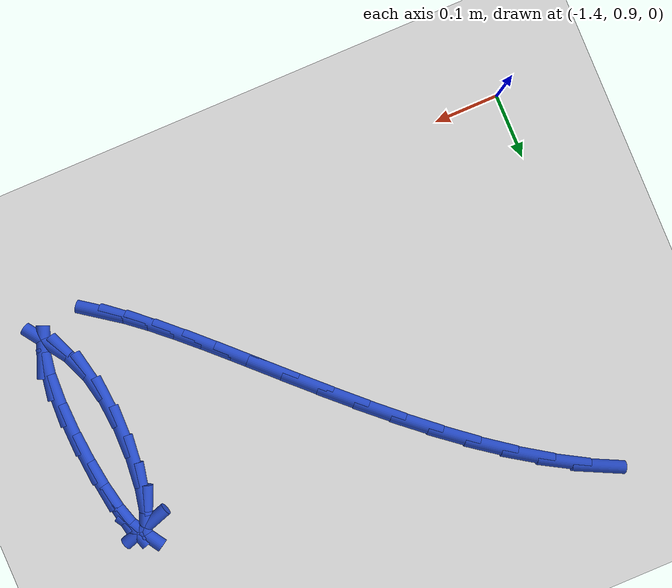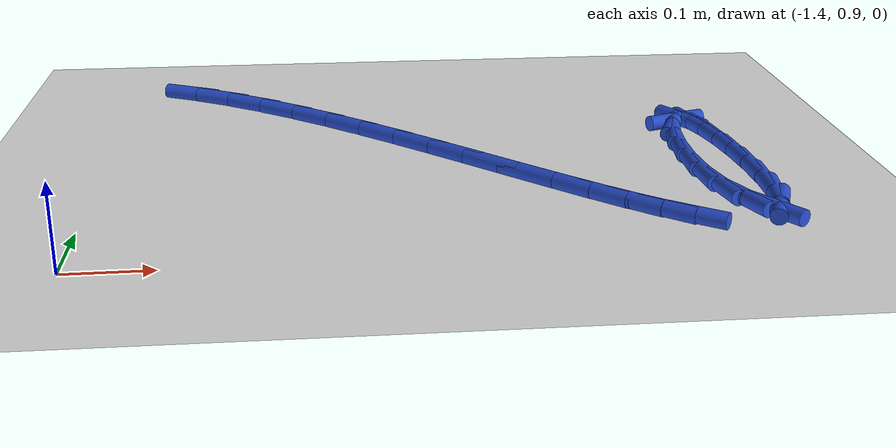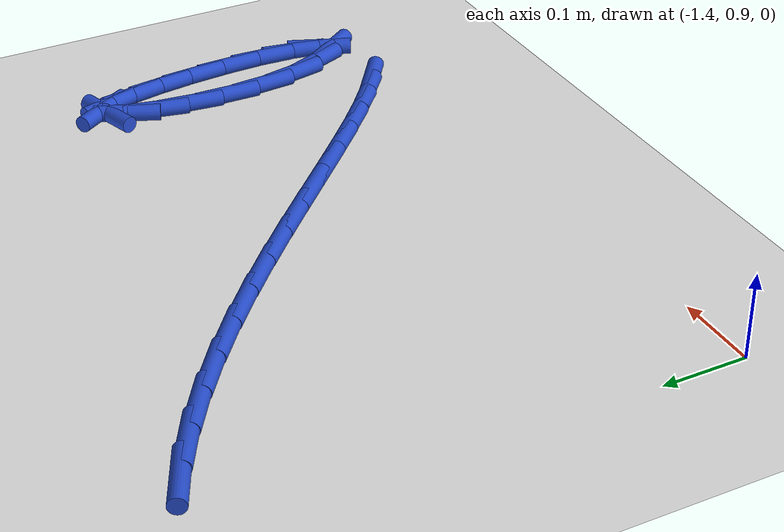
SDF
<sdf version="1.6">
 <world name="default">
  <model name="ground_plane">
   <static>1</static>
   <link name="link">
    <collision name="collision">
     <geometry><plane><normal>0 0 1</normal><size>100 100</size></plane></geometry>
     <surface><friction><ode><mu>100</mu><mu2>50</mu2></ode></friction></surface>
    </collision>
    <visual name="visual">
     <cast_shadows>0</cast_shadows>
     <geometry><plane><normal>0 0 1</normal><size>100 100</size></plane></geometry>
     <material>
      <script><uri>file://media/materials/scripts/gazebo.material</uri><name>Gazebo/WhiteGlow</name></script>
     </material>
    </visual>
   </link>
  </model>
  <model name="line">
   <link name="link_33">
    <pose>-0.632065725274408 0.9796731698303713 0.01 0 1.57 -0.9640610305196036</pose>
    <collision name="collision">
     <geometry><cylinder><radius>0.01</radius><length>0.08</length></cylinder></geometry>
    </collision>
    <visual name="visual">
     <material>
      <script><name>Gazebo/Blue</name><uri>file://media/materials/scripts/gazebo.material</uri></script>
     </material>
     <geometry><cylinder><radius>0.01</radius><length>0.08</length></cylinder></geometry>
    </visual>
   </link>
   <link name="link_34">
    <pose>-0.6539037090180577 1.0111368118141157 0.01 0 1.57 -1.1863665383951332</pose>
    <collision name="collision">
     <geometry><cylinder><radius>0.01</radius><length>0.08</length></cylinder></geometry>
    </collision>
    <visual name="visual">
     <material>
      <script><name>Gazebo/Blue</name><uri>file://media/materials/scripts/gazebo.material</uri></script>
     </material>
     <geometry><cylinder><radius>0.01</radius><length>0.08</length></cylinder></geometry>
    </visual>
   </link>
   <link name="link_35">
    <pose>-0.6696422845561799 1.050039917272067 0.01 0 1.57 -1.3712676362038603</pose>
    <collision name="collision">
     <geometry><cylinder><radius>0.01</radius><length>0.08</length></cylinder></geometry>
    </collision>
    <visual name="visual">
     <material>
      <script><name>Gazebo/Blue</name><uri>file://media/materials/scripts/gazebo.material</uri></script>
     </material>
     <geometry><cylinder><radius>0.01</radius><length>0.08</length></cylinder></geometry>
    </visual>
   </link>
   <link name="link_36">
    <pose>-0.6789149964960828 1.0958946258504128 0.01 0 1.57 -1.4964327469059333</pose>
    <collision name="collision">
     <geometry><cylinder><radius>0.01</radius><length>0.08</length></cylinder></geometry>
    </collision>
    <visual name="visual">
     <material>
      <script><name>Gazebo/Blue</name><uri>file://media/materials/scripts/gazebo.material</uri></script>
     </material>
     <geometry><cylinder><radius>0.01</radius><length>0.08</length></cylinder></geometry>
    </visual>
   </link>
   <link name="link_37">
    <pose>-0.6825691599199596 1.1449431678137225 0.01 0 1.57 1.5504297283499393</pose>
    <collision name="collision">
     <geometry><cylinder><radius>0.01</radius><length>0.08</length></cylinder></geometry>
    </collision>
    <visual name="visual">
     <material>
      <script><name>Gazebo/Blue</name><uri>file://media/materials/scripts/gazebo.material</uri></script>
     </material>
     <geometry><cylinder><radius>0.01</radius><length>0.08</length></cylinder></geometry>
    </visual>
   </link>
   <link name="link_38">
    <pose>-0.6815890739234766 1.1930587371713155 0.01 0 1.57 1.4636722464115142</pose>
    <collision name="collision">
     <geometry><cylinder><radius>0.01</radius><length>0.08</length></cylinder></geometry>
    </collision>
    <visual name="visual">
     <material>
      <script><name>Gazebo/Blue</name><uri>file://media/materials/scripts/gazebo.material</uri></script>
     </material>
     <geometry><cylinder><radius>0.01</radius><length>0.08</length></cylinder></geometry>
    </visual>
   </link>
   <link name="link_39">
    <pose>-0.6769590376022994 1.2361145279325125 0.01 0 1.57 1.3586305198370214</pose>
    <collision name="collision">
     <geometry><cylinder><radius>0.01</radius><length>0.08</length></cylinder></geometry>
    </collision>
    <visual name="visual">
     <material>
      <script><name>Gazebo/Blue</name><uri>file://media/materials/scripts/gazebo.material</uri></script>
     </material>
     <geometry><cylinder><radius>0.01</radius><length>0.08</length></cylinder></geometry>
    </visual>
   </link>
   <link name="link_40">
    <pose>-0.6696633500520935 1.269983734106632 0.01 0 1.57 1.1590446876044256</pose>
    <collision name="collision">
     <geometry><cylinder><radius>0.01</radius><length>0.08</length></cylinder></geometry>
    </collision>
    <visual name="visual">
     <material>
      <script><name>Gazebo/Blue</name><uri>file://media/materials/scripts/gazebo.material</uri></script>
     </material>
     <geometry><cylinder><radius>0.01</radius><length>0.08</length></cylinder></geometry>
    </visual>
   </link>
   <link name="link_41">
    <pose>-0.6606863103685253 1.2905395497029946 0.01 0 1.57 0.3180422039211436</pose>
    <collision name="collision">
     <geometry><cylinder><radius>0.01</radius><length>0.08</length></cylinder></geometry>
    </collision>
    <visual name="visual">
     <material>
      <script><name>Gazebo/Blue</name><uri>file://media/materials/scripts/gazebo.material</uri></script>
     </material>
     <geometry><cylinder><radius>0.01</radius><length>0.08</length></cylinder></geometry>
    </visual>
   </link>
   <link name="link_42">
    <pose>-0.65100818478211 1.2937257629691132 0.01 0 1.57 -1.0026407274218863</pose>
    <collision name="collision">
     <geometry><cylinder><radius>0.01</radius><length>0.08</length></cylinder></geometry>
    </collision>
    <visual name="visual">
     <material>
      <script><name>Gazebo/Blue</name><uri>file://media/materials/scripts/gazebo.material</uri></script>
     </material>
     <geometry><cylinder><radius>0.01</radius><length>0.08</length></cylinder></geometry>
    </visual>
   </link>
   <link name="link_43">
    <pose>-0.6414248655405949 1.2787135799741332 0.01 0 1.57 -1.276661519445988</pose>
    <collision name="collision">
     <geometry><cylinder><radius>0.01</radius><length>0.08</length></cylinder></geometry>
    </collision>
    <visual name="visual">
     <material>
      <script><name>Gazebo/Blue</name><uri>file://media/materials/scripts/gazebo.material</uri></script>
     </material>
     <geometry><cylinder><radius>0.01</radius><length>0.08</length></cylinder></geometry>
    </visual>
   </link>
   <link name="link_44">
    <pose>-0.6324754232459395 1.2491698017954371 0.01 0 1.57 -1.3786751088811442</pose>
    <collision name="collision">
     <geometry><cylinder><radius>0.01</radius><length>0.08</length></cylinder></geometry>
    </collision>
    <visual name="visual">
     <material>
      <script><name>Gazebo/Blue</name><uri>file://media/materials/scripts/gazebo.material</uri></script>
     </material>
     <geometry><cylinder><radius>0.01</radius><length>0.08</length></cylinder></geometry>
    </visual>
   </link>
   <link name="link_45">
    <pose>-0.6246799053636082 1.2090942244852467 0.01 0 1.57 -1.4402015747502128</pose>
    <collision name="collision">
     <geometry><cylinder><radius>0.01</radius><length>0.08</length></cylinder></geometry>
    </collision>
    <visual name="visual">
     <material>
      <script><name>Gazebo/Blue</name><uri>file://media/materials/scripts/gazebo.material</uri></script>
     </material>
     <geometry><cylinder><radius>0.01</radius><length>0.08</length></cylinder></geometry>
    </visual>
   </link>
   <link name="link_46">
    <pose>-0.6185583593590643 1.162486644095784 0.01 0 1.57 -1.4910402750979965</pose>
    <collision name="collision">
     <geometry><cylinder><radius>0.01</radius><length>0.08</length></cylinder></geometry>
    </collision>
    <visual name="visual">
     <material>
      <script><name>Gazebo/Blue</name><uri>file://media/materials/scripts/gazebo.material</uri></script>
     </material>
     <geometry><cylinder><radius>0.01</radius><length>0.08</length></cylinder></geometry>
    </visual>
   </link>
   <link name="link_47">
    <pose>-0.6146308326977716 1.113346856679269 0.01 0 1.57 -1.545347576350458</pose>
    <collision name="collision">
     <geometry><cylinder><radius>0.01</radius><length>0.08</length></cylinder></geometry>
    </collision>
    <visual name="visual">
     <material>
      <script><name>Gazebo/Blue</name><uri>file://media/materials/scripts/gazebo.material</uri></script>
     </material>
     <geometry><cylinder><radius>0.01</radius><length>0.08</length></cylinder></geometry>
    </visual>
   </link>
   <link name="link_48">
    <pose>-0.6134173728451937 1.0656746582879242 0.01 0 1.57 1.5229555133597268</pose>
    <collision name="collision">
     <geometry><cylinder><radius>0.01</radius><length>0.08</length></cylinder></geometry>
    </collision>
    <visual name="visual">
     <material>
      <script><name>Gazebo/Blue</name><uri>file://media/materials/scripts/gazebo.material</uri></script>
     </material>
     <geometry><cylinder><radius>0.01</radius><length>0.08</length></cylinder></geometry>
    </visual>
   </link>
   <link name="link_49">
    <pose>-0.6154380272667944 1.0234698449739708 0.01 0 1.57 1.400284303048932</pose>
    <collision name="collision">
     <geometry><cylinder><radius>0.01</radius><length>0.08</length></cylinder></geometry>
    </collision>
    <visual name="visual">
     <material>
      <script><name>Gazebo/Blue</name><uri>file://media/materials/scripts/gazebo.material</uri></script>
     </material>
     <geometry><cylinder><radius>0.01</radius><length>0.08</length></cylinder></geometry>
    </visual>
   </link>
   <link name="link_50">
    <pose>-0.6211488049852194 0.990303125683209 0.01 0 1.57 1.190419656338284</pose>
    <collision name="collision">
     <geometry><cylinder><radius>0.01</radius><length>0.08</length></cylinder></geometry>
    </collision>
    <visual name="visual">
     <material>
      <script><name>Gazebo/Blue</name><uri>file://media/materials/scripts/gazebo.material</uri></script>
     </material>
     <geometry><cylinder><radius>0.01</radius><length>0.08</length></cylinder></geometry>
    </visual>
   </link>
   <link name="link_56">
    <pose>-0.7269065506958953 0.9697566373335778 0.01 0 1.57 -0.6217539591754776</pose>
    <collision name="collision">
     <geometry><cylinder><radius>0.01</radius><length>0.08</length></cylinder></geometry>
    </collision>
    <visual name="visual">
     <material>
      <script><name>Gazebo/Blue</name><uri>file://media/materials/scripts/gazebo.material</uri></script>
     </material>
     <geometry><cylinder><radius>0.01</radius><length>0.08</length></cylinder></geometry>
    </visual>
   </link>
   <link name="link_57">
    <pose>-0.7547841733780253 0.9897326328258785 0.01 0 1.57 -0.6863681572205017</pose>
    <collision name="collision">
     <geometry><cylinder><radius>0.01</radius><length>0.08</length></cylinder></geometry>
    </collision>
    <visual name="visual">
     <material>
      <script><name>Gazebo/Blue</name><uri>file://media/materials/scripts/gazebo.material</uri></script>
     </material>
     <geometry><cylinder><radius>0.01</radius><length>0.08</length></cylinder></geometry>
    </visual>
   </link>
   <link name="link_58">
    <pose>-0.7851150716112525 1.0145811770902697 0.01 0 1.57 -0.7276382815180285</pose>
    <collision name="collision">
     <geometry><cylinder><radius>0.01</radius><length>0.08</length></cylinder></geometry>
    </collision>
    <visual name="visual">
     <material>
      <script><name>Gazebo/Blue</name><uri>file://media/materials/scripts/gazebo.material</uri></script>
     </material>
     <geometry><cylinder><radius>0.01</radius><length>0.08</length></cylinder></geometry>
    </visual>
   </link>
   <link name="link_59">
    <pose>-0.8177208667561294 1.0436222891072953 0.01 0 1.57 -0.753462220610442</pose>
    <collision name="collision">
     <geometry><cylinder><radius>0.01</radius><length>0.08</length></cylinder></geometry>
    </collision>
    <visual name="visual">
     <material>
      <script><name>Gazebo/Blue</name><uri>file://media/materials/scripts/gazebo.material</uri></script>
     </material>
     <geometry><cylinder><radius>0.01</radius><length>0.08</length></cylinder></geometry>
    </visual>
   </link>
   <link name="link_60">
    <pose>-0.8524231801732084 1.0761759878574988 0.01 0 1.57 -0.7682604973898399</pose>
    <collision name="collision">
     <geometry><cylinder><radius>0.01</radius><length>0.08</length></cylinder></geometry>
    </collision>
    <visual name="visual">
     <material>
      <script><name>Gazebo/Blue</name><uri>file://media/materials/scripts/gazebo.material</uri></script>
     </material>
     <geometry><cylinder><radius>0.01</radius><length>0.08</length></cylinder></geometry>
    </visual>
   </link>
   <link name="link_61">
    <pose>-0.889043633223042 1.1115622923214246 0.01 0 1.57 -0.7745778458253847</pose>
    <collision name="collision">
     <geometry><cylinder><radius>0.01</radius><length>0.08</length></cylinder></geometry>
    </collision>
    <visual name="visual">
     <material>
      <script><name>Gazebo/Blue</name><uri>file://media/materials/scripts/gazebo.material</uri></script>
     </material>
     <geometry><cylinder><radius>0.01</radius><length>0.08</length></cylinder></geometry>
    </visual>
   </link>
   <link name="link_62">
    <pose>-0.9274038472661822 1.1491012214796164 0.01 0 1.57 -0.7738696354495205</pose>
    <collision name="collision">
     <geometry><cylinder><radius>0.01</radius><length>0.08</length></cylinder></geometry>
    </collision>
    <visual name="visual">
     <material>
      <script><name>Gazebo/Blue</name><uri>file://media/materials/scripts/gazebo.material</uri></script>
     </material>
     <geometry><cylinder><radius>0.01</radius><length>0.08</length></cylinder></geometry>
    </visual>
   </link>
   <link name="link_63">
    <pose>-0.9673254436631822 1.1881127943126184 0.01 0 1.57 -0.7669021078882596</pose>
    <collision name="collision">
     <geometry><cylinder><radius>0.01</radius><length>0.08</length></cylinder></geometry>
    </collision>
    <visual name="visual">
     <material>
      <script><name>Gazebo/Blue</name><uri>file://media/materials/scripts/gazebo.material</uri></script>
     </material>
     <geometry><cylinder><radius>0.01</radius><length>0.08</length></cylinder></geometry>
    </visual>
   </link>
   <link name="link_64">
    <pose>-1.0086300437745939 1.2279170298009745 0.01 0 1.57 -0.7539584549950286</pose>
    <collision name="collision">
     <geometry><cylinder><radius>0.01</radius><length>0.08</length></cylinder></geometry>
    </collision>
    <visual name="visual">
     <material>
      <script><name>Gazebo/Blue</name><uri>file://media/materials/scripts/gazebo.material</uri></script>
     </material>
     <geometry><cylinder><radius>0.01</radius><length>0.08</length></cylinder></geometry>
    </visual>
   </link>
   <link name="link_65">
    <pose>-1.0511392689609704 1.2678339469252284 0.01 0 1.57 -0.7349391392507844</pose>
    <collision name="collision">
     <geometry><cylinder><radius>0.01</radius><length>0.08</length></cylinder></geometry>
    </collision>
    <visual name="visual">
     <material>
      <script><name>Gazebo/Blue</name><uri>file://media/materials/scripts/gazebo.material</uri></script>
     </material>
     <geometry><cylinder><radius>0.01</radius><length>0.08</length></cylinder></geometry>
    </visual>
   </link>
   <link name="link_66">
    <pose>-1.0946747405828632 1.3071835646659242 0.01 0 1.57 -0.709398248356987</pose>
    <collision name="collision">
     <geometry><cylinder><radius>0.01</radius><length>0.08</length></cylinder></geometry>
    </collision>
    <visual name="visual">
     <material>
      <script><name>Gazebo/Blue</name><uri>file://media/materials/scripts/gazebo.material</uri></script>
     </material>
     <geometry><cylinder><radius>0.01</radius><length>0.08</length></cylinder></geometry>
    </visual>
   </link>
   <link name="link_67">
    <pose>-1.139058080000825 1.3452859020036054 0.01 0 1.57 -0.6765358837936911</pose>
    <collision name="collision">
     <geometry><cylinder><radius>0.01</radius><length>0.08</length></cylinder></geometry>
    </collision>
    <visual name="visual">
     <material>
      <script><name>Gazebo/Blue</name><uri>file://media/materials/scripts/gazebo.material</uri></script>
     </material>
     <geometry><cylinder><radius>0.01</radius><length>0.08</length></cylinder></geometry>
    </visual>
   </link>
   <link name="link_68">
    <pose>-1.1841109085754091 1.3814609779188172 0.01 0 1.57 -0.6351568115690917</pose>
    <collision name="collision">
     <geometry><cylinder><radius>0.01</radius><length>0.08</length></cylinder></geometry>
    </collision>
    <visual name="visual">
     <material>
      <script><name>Gazebo/Blue</name><uri>file://media/materials/scripts/gazebo.material</uri></script>
     </material>
     <geometry><cylinder><radius>0.01</radius><length>0.08</length></cylinder></geometry>
    </visual>
   </link>
   <link name="link_69">
    <pose>-1.2296548476671676 1.4150288113921023 0.01 0 1.57 -0.5840671310520521</pose>
    <collision name="collision">
     <geometry><cylinder><radius>0.01</radius><length>0.08</length></cylinder></geometry>
    </collision>
    <visual name="visual">
     <material>
      <script><name>Gazebo/Blue</name><uri>file://media/materials/scripts/gazebo.material</uri></script>
     </material>
     <geometry><cylinder><radius>0.01</radius><length>0.08</length></cylinder></geometry>
    </visual>
   </link>
   <link name="link_70">
    <pose>-1.2754552670662003 1.4453027485287253 0.01 0 1.57 -0.5249370737210832</pose>
    <collision name="collision">
     <geometry><cylinder><radius>0.01</radius><length>0.08</length></cylinder></geometry>
    </collision>
    <visual name="visual">
     <material>
      <script><name>Gazebo/Blue</name><uri>file://media/materials/scripts/gazebo.material</uri></script>
     </material>
     <geometry><cylinder><radius>0.01</radius><length>0.08</length></cylinder></geometry>
    </visual>
   </link>
   <link name="link_71">
    <pose>-1.320747817566928 1.4715332972098294 0.01 0 1.57 -0.4551670922995273</pose>
    <collision name="collision">
     <geometry><cylinder><radius>0.01</radius><length>0.08</length></cylinder></geometry>
    </collision>
    <visual name="visual">
     <material>
      <script><name>Gazebo/Blue</name><uri>file://media/materials/scripts/gazebo.material</uri></script>
     </material>
     <geometry><cylinder><radius>0.01</radius><length>0.08</length></cylinder></geometry>
    </visual>
   </link>
  </model>
 </world>
</sdf>
